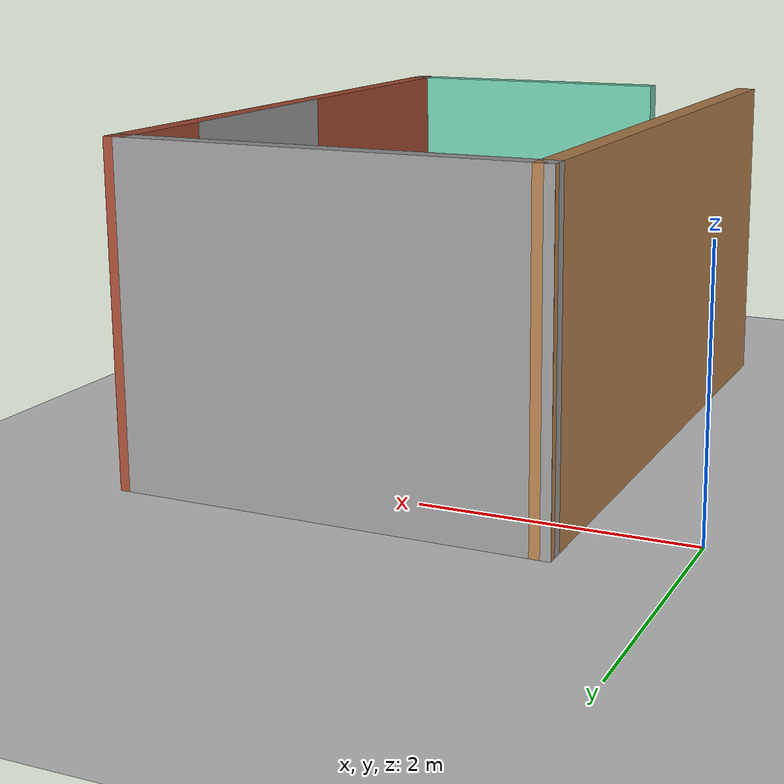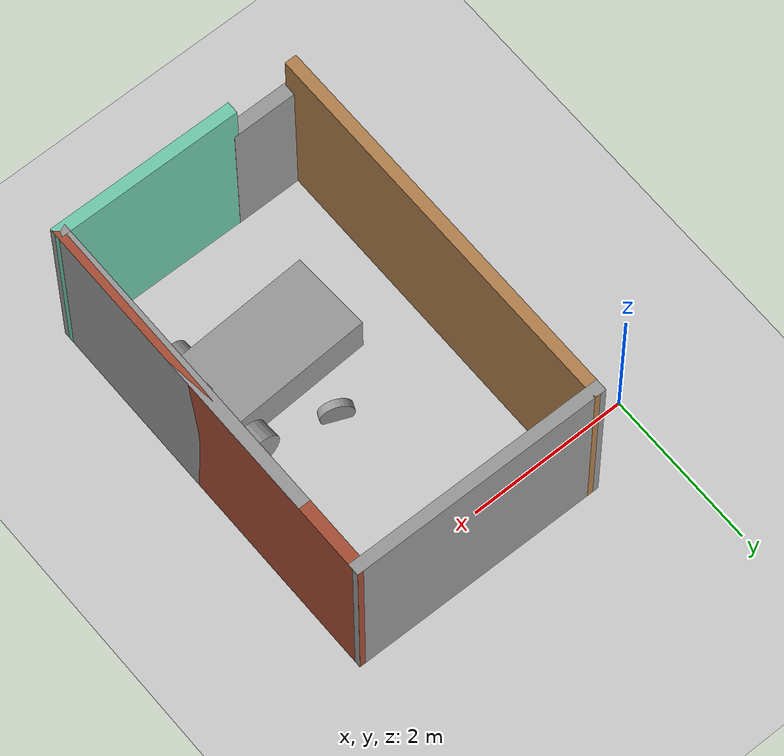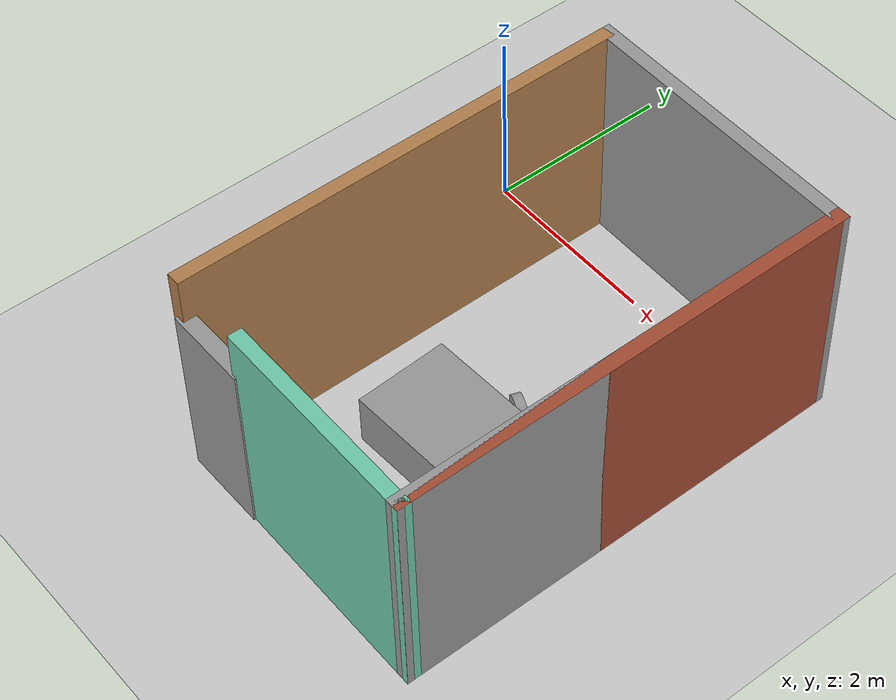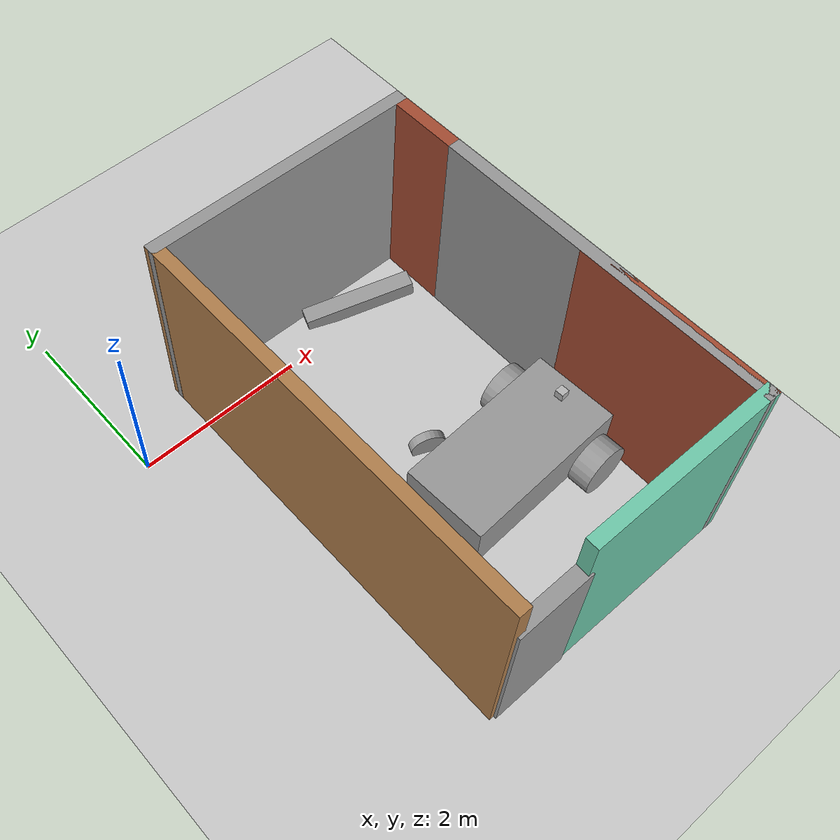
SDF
<sdf version="1.6">
 <world name="default">
  <plugin name="hi" filename="libhi.so"/>
  <light name="sun" type="directional">
   <pose>0 0 10 0 -0 0</pose>
   <diffuse>0.8 0.8 0.8 1</diffuse>
   <specular>0.2 0.2 0.2 1</specular>
   <attenuation>
    <range>1000</range>
    <constant>0.9</constant>
    <linear>0.01</linear>
    <quadratic>0.001</quadratic>
   </attenuation>
   <direction>-0.5 0.1 -0.9</direction>
  </light>
  <model name="ground_plane">
   <static>1</static>
   <link name="link">
    <collision name="collision">
     <geometry><plane><normal>0 0 1</normal><size>100 100</size></plane></geometry>
     <surface>
      <contact><collide_bitmask>65535</collide_bitmask></contact>
      <friction><ode><mu>100</mu><mu2>50</mu2></ode></friction>
     </surface>
    </collision>
    <visual name="visual">
     <cast_shadows>0</cast_shadows>
     <geometry><plane><normal>0 0 1</normal><size>100 100</size></plane></geometry>
     <material>
      <script><uri>file://media/materials/scripts/gazebo.material</uri><name>Gazebo/Grey</name></script>
     </material>
    </visual>
   </link>
  </model>
  <gravity>0 0 -9.8</gravity>
  <magnetic_field>6e-06 2.3e-05 -4.2e-05</magnetic_field>
  <atmosphere type="adiabatic"/>
  <physics name="default_physics" default="0" type="ode">
   <max_step_size>0.001</max_step_size>
   <real_time_factor>1</real_time_factor>
   <real_time_update_rate>1000</real_time_update_rate>
  </physics>
  <scene><ambient>0.4 0.4 0.4 1</ambient><background>0.7 0.7 0.7 1</background><shadows>1</shadows></scene>
  <audio><device>default</device></audio>
  <spherical_coordinates>
   <surface_model>EARTH_WGS84</surface_model>
   <latitude_deg>0</latitude_deg>
   <longitude_deg>0</longitude_deg>
   <elevation>0</elevation>
   <heading_deg>0</heading_deg>
  </spherical_coordinates>
  <model name="house">
   <pose>2.42969 -1.90929 0 0 -0 0</pose>
   <link name="Door_0">
    <collision name="Door_0_Collision">
     <geometry><box><size>0.9 0.17 2</size></box></geometry>
     <pose>0 0 1 0 -0 0</pose>
    </collision>
    <visual name="Door_0_Visual">
     <pose>0 0 1 0 -0 0</pose>
     <geometry><box><size>0.9 0.17 2</size></box></geometry>
     <material>
      <script><uri>file://media/materials/scripts/gazebo.material</uri><name>Gazebo/Grey</name></script>
     </material>
    </visual>
    <pose>-1.11144 -2.43119 0 0 -0 0</pose>
   </link>
   <link name="Wall_19">
    <collision name="Wall_19_Collision">
     <geometry><box><size>0.15 0.15 2.5</size></box></geometry>
     <pose>0 0 1.25 0 -0 0</pose>
    </collision>
    <visual name="Wall_19_Visual">
     <pose>0 0 1.25 0 -0 0</pose>
     <geometry><box><size>0.15 0.15 2.5</size></box></geometry>
     <material>
      <script><uri>file://media/materials/scripts/gazebo.material</uri><name>Gazebo/Grey</name></script>
      <ambient>1 1 1 1</ambient>
     </material>
     <meta><layer>0</layer></meta>
    </visual>
    <pose>1.5424 -2.44029 0 0 -0 0</pose>
   </link>
   <link name="Wall_23">
    <collision name="Wall_23_Collision">
     <geometry><box><size>4.06521 0.15 2.5</size></box></geometry>
     <pose>0 0 1.25 0 -0 0</pose>
    </collision>
    <visual name="Wall_23_Visual">
     <pose>0 0 1.25 0 -0 0</pose>
     <geometry><box><size>4.06521 0.15 2.5</size></box></geometry>
     <material>
      <script><uri>file://media/materials/scripts/gazebo.material</uri><name>Gazebo/Grey</name></script>
      <ambient>1 1 1 1</ambient>
     </material>
     <meta><layer>0</layer></meta>
    </visual>
    <pose>1.5424 -0.482688 0 0 -0 1.5708</pose>
   </link>
   <link name="Wall_30">
    <collision name="Wall_30_Collision">
     <geometry><box><size>2.33562 0.15 2.5</size></box></geometry>
     <pose>0 0 1.25 0 -0 0</pose>
    </collision>
    <visual name="Wall_30_Visual">
     <pose>0 0 1.25 0 -0 0</pose>
     <geometry><box><size>2.33562 0.15 2.5</size></box></geometry>
     <material>
      <script><uri>file://media/materials/scripts/gazebo.material</uri><name>Gazebo/Grey</name></script>
      <ambient>0.435294 0.796078 0.67451 1</ambient>
     </material>
     <meta><layer>0</layer></meta>
    </visual>
    <pose>0.449618 -2.43195 0 0 -0 -0.007632</pose>
   </link>
   <link name="Wall_4">
    <collision name="Wall_4_Collision">
     <geometry><box><size>5 0.15 2.5</size></box></geometry>
     <pose>0 0 1.25 0 -0 0</pose>
    </collision>
    <visual name="Wall_4_Visual">
     <pose>0 0 1.25 0 -0 0</pose>
     <geometry><box><size>5 0.15 2.5</size></box></geometry>
     <material>
      <script><uri>file://media/materials/scripts/gazebo.material</uri><name>Gazebo/Wood</name></script>
      <ambient>1 1 1 1</ambient>
     </material>
     <meta><layer>0</layer></meta>
    </visual>
    <pose>-1.5424 0.015126 0 0 -0 -1.5708</pose>
   </link>
   <link name="Wall_6">
    <collision name="Wall_6_Collision">
     <geometry><box><size>3.23513 0.15 2.5</size></box></geometry>
     <pose>0 0 1.25 0 -0 0</pose>
    </collision>
    <visual name="Wall_6_Visual">
     <pose>0 0 1.25 0 -0 0</pose>
     <geometry><box><size>3.23513 0.15 2.5</size></box></geometry>
     <material>
      <script><uri>file://media/materials/scripts/gazebo.material</uri><name>Gazebo/Grey</name></script>
      <ambient>1 1 1 1</ambient>
     </material>
     <meta><layer>0</layer></meta>
    </visual>
    <pose>0 2.42492 0 0 -0 -0.00986</pose>
   </link>
   <link name="Wall_8">
    <collision name="Wall_8_Collision">
     <geometry><box><size>5 0.15 2.5</size></box></geometry>
     <pose>0 0 1.25 0 -0 0</pose>
    </collision>
    <visual name="Wall_8_Visual">
     <pose>0 0 1.25 0 -0 0</pose>
     <geometry><box><size>5 0.15 2.5</size></box></geometry>
     <material>
      <script><uri>file://media/materials/scripts/gazebo.material</uri><name>Gazebo/Bricks</name></script>
      <ambient>0.435294 0.796078 0.67451 1</ambient>
     </material>
     <meta><layer>0</layer></meta>
    </visual>
    <pose>1.5424 -0.015292 0 0 -0 -1.5708</pose>
   </link>
   <static>1</static>
  </model>
  <model name="follower_vehicle">
   <pose>2.91424 -2.63733 0.325006 0 -1.1e-05 0.046963</pose>
   <link name="chassis">
    <pose>-0.151427 -0 0.175 0 -0 0</pose>
    <inertial>
     <mass>1.14395</mass>
     <inertia>
      <ixx>0.126164</ixx>
      <ixy>0</ixy>
      <ixz>0</ixz>
      <iyy>0.416519</iyy>
      <iyz>0</iyz>
      <izz>0.481014</izz>
     </inertia>
    </inertial>
    <visual name="visual">
     <geometry><box><size>2.01142 1 0.568726</size></box></geometry>
     <material>
      <script><uri>file://media/materials/scripts/gazebo.material</uri><name>Gazebo/Grey</name></script>
     </material>
    </visual>
    <collision name="collision">
     <geometry><box><size>2.01142 1 0.568726</size></box></geometry>
     <surface>
      <friction><ode><mu>1</mu><mu2>1</mu2><fdir1>0 0 0</fdir1><slip1>0</slip1><slip2>0</slip2></ode></friction>
      <bounce><restitution_coefficient>0</restitution_coefficient><threshold>1e+06</threshold></bounce>
      <contact>
       <collide_without_contact>0</collide_without_contact>
       <collide_without_contact_bitmask>1</collide_without_contact_bitmask>
       <collide_bitmask>1</collide_bitmask>
       <ode>
        <soft_cfm>0</soft_cfm>
        <soft_erp>0.2</soft_erp>
        <kp>1e+13</kp>
        <kd>1</kd>
        <max_vel>0.01</max_vel>
        <min_depth>0</min_depth>
       </ode>
      </contact>
     </surface>
    </collision>
   </link>
   <link name="wheel_1">
    <pose>0.554283 0.625029 -0.025 1.5707 -0 0</pose>
    <inertial>
     <mass>2</mass>
     <inertia><ixx>0.145833</ixx><ixy>0</ixy><ixz>0</ixz><iyy>0.145833</iyy><iyz>0</iyz><izz>0.125</izz></inertia>
    </inertial>
    <visual name="visual">
     <geometry><cylinder><radius>0.3</radius><length>0.25</length></cylinder></geometry>
     <material>
      <script><uri>file://media/materials/scripts/gazebo.material</uri><name>Gazebo/Grey</name></script>
     </material>
    </visual>
    <collision name="collision">
     <geometry><cylinder><radius>0.3</radius><length>0.25</length></cylinder></geometry>
     <surface>
      <friction><ode><mu>1</mu><mu2>1</mu2><fdir1>0 0 0</fdir1><slip1>0</slip1><slip2>0</slip2></ode></friction>
      <bounce><restitution_coefficient>0</restitution_coefficient><threshold>1e+06</threshold></bounce>
      <contact>
       <collide_without_contact>0</collide_without_contact>
       <collide_without_contact_bitmask>1</collide_without_contact_bitmask>
       <collide_bitmask>1</collide_bitmask>
       <ode>
        <soft_cfm>0</soft_cfm>
        <soft_erp>0.2</soft_erp>
        <kp>1e+13</kp>
        <kd>1</kd>
        <max_vel>0.01</max_vel>
        <min_depth>0</min_depth>
       </ode>
      </contact>
     </surface>
    </collision>
   </link>
   <link name="wheel_2">
    <pose>0.554282 -0.625029 -0.025 1.5707 -0 0</pose>
    <inertial>
     <mass>2</mass>
     <inertia><ixx>0.145833</ixx><ixy>0</ixy><ixz>0</ixz><iyy>0.145833</iyy><iyz>0</iyz><izz>0.125</izz></inertia>
    </inertial>
    <visual name="visual">
     <geometry><cylinder><radius>0.3</radius><length>0.25</length></cylinder></geometry>
     <material>
      <script><uri>file://media/materials/scripts/gazebo.material</uri><name>Gazebo/Grey</name></script>
     </material>
    </visual>
    <collision name="collision">
     <geometry><cylinder><radius>0.3</radius><length>0.25</length></cylinder></geometry>
     <surface>
      <friction><ode><mu>1</mu><mu2>1</mu2><fdir1>0 0 0</fdir1><slip1>0</slip1><slip2>0</slip2></ode></friction>
      <bounce><restitution_coefficient>0</restitution_coefficient><threshold>1e+06</threshold></bounce>
      <contact>
       <collide_without_contact>0</collide_without_contact>
       <collide_without_contact_bitmask>1</collide_without_contact_bitmask>
       <collide_bitmask>1</collide_bitmask>
       <ode>
        <soft_cfm>0</soft_cfm>
        <soft_erp>0.2</soft_erp>
        <kp>1e+13</kp>
        <kd>1</kd>
        <max_vel>0.01</max_vel>
        <min_depth>0</min_depth>
       </ode>
      </contact>
     </surface>
    </collision>
   </link>
   <link name="caster">
    <pose>-0.957138 -0 -0.125 0 -0 0</pose>
    <inertial>
     <mass>1</mass>
     <inertia><ixx>0.1</ixx><ixy>0</ixy><ixz>0</ixz><iyy>0.1</iyy><iyz>0</iyz><izz>0.1</izz></inertia>
    </inertial>
    <visual name="visual">
     <geometry><sphere><radius>0.2</radius></sphere></geometry>
     <material>
      <script><uri>file://media/materials/scripts/gazebo.material</uri><name>Gazebo/Grey</name></script>
     </material>
    </visual>
    <collision name="collision">
     <geometry><sphere><radius>0.2</radius></sphere></geometry>
     <surface>
      <friction><ode><mu>1</mu><mu2>1</mu2><fdir1>0 0 0</fdir1><slip1>0</slip1><slip2>0</slip2></ode></friction>
      <bounce><restitution_coefficient>0</restitution_coefficient><threshold>1e+06</threshold></bounce>
      <contact>
       <collide_without_contact>0</collide_without_contact>
       <collide_without_contact_bitmask>1</collide_without_contact_bitmask>
       <collide_bitmask>1</collide_bitmask>
       <ode>
        <soft_cfm>0</soft_cfm>
        <soft_erp>0.2</soft_erp>
        <kp>1e+13</kp>
        <kd>1</kd>
        <max_vel>0.01</max_vel>
        <min_depth>0</min_depth>
       </ode>
      </contact>
     </surface>
    </collision>
   </link>
   <model name="depth_camera">
    <link name="link">
     <pose>0.05 0.05 0.05 0 -0 0</pose>
     <inertial>
      <mass>0.1</mass>
      <inertia>
       <ixx>0.000166667</ixx>
       <iyy>0.000166667</iyy>
       <izz>0.000166667</izz>
       <ixy>0</ixy>
       <ixz>0</ixz>
       <iyz>0</iyz>
      </inertia>
     </inertial>
     <collision name="collision"><geometry><box><size>0.1 0.1 0.1</size></box></geometry></collision>
     <visual name="visual"><geometry><box><size>0.1 0.1 0.1</size></box></geometry></visual>
     <sensor name="camera" type="depth">
      <camera name="depth">
       <horizontal_fov>1.047</horizontal_fov>
       <image><width>320</width><height>240</height></image>
       <clip><near>0.1</near><far>100</far></clip>
      </camera>
      <always_on>1</always_on>
      <update_rate>30</update_rate>
      <visualize>1</visualize>
     </sensor>
    </link>
    <pose>0.569632 -0.03223 0.502056 0 -0 0</pose>
   </model>
   <joint name="chassis_wheel_1_revolute" type="revolute">
    <parent>chassis</parent>
    <child>wheel_1</child>
    <axis>
     <xyz>0 0 1</xyz>
     <use_parent_model_frame>0</use_parent_model_frame>
     <limit>
      <lower>-1.79769e+308</lower>
      <upper>1.79769e+308</upper>
      <effort>-1</effort>
      <velocity>-1</velocity>
     </limit>
     <dynamics>
      <spring_reference>0</spring_reference>
      <spring_stiffness>0</spring_stiffness>
      <damping>0</damping>
      <friction>0</friction>
     </dynamics>
    </axis>
    <physics>
     <ode><limit><cfm>0</cfm><erp>0.2</erp></limit><suspension><cfm>0</cfm><erp>0.2</erp></suspension></ode>
    </physics>
   </joint>
   <joint name="chassis_wheel_2_revolute" type="revolute">
    <parent>chassis</parent>
    <child>wheel_2</child>
    <axis>
     <xyz>0 0 1</xyz>
     <use_parent_model_frame>0</use_parent_model_frame>
     <limit>
      <lower>-1.79769e+308</lower>
      <upper>1.79769e+308</upper>
      <effort>-1</effort>
      <velocity>-1</velocity>
     </limit>
     <dynamics>
      <spring_reference>0</spring_reference>
      <spring_stiffness>0</spring_stiffness>
      <damping>0</damping>
      <friction>0</friction>
     </dynamics>
    </axis>
    <physics>
     <ode><limit><cfm>0</cfm><erp>0.2</erp></limit><suspension><cfm>0</cfm><erp>0.2</erp></suspension></ode>
    </physics>
   </joint>
   <joint name="chassis_caster_ball" type="ball">
    <parent>chassis</parent>
    <child>caster</child>
    <physics>
     <ode><limit><cfm>0</cfm><erp>0.2</erp></limit><suspension><cfm>0</cfm><erp>0.2</erp></suspension></ode>
    </physics>
   </joint>
   <joint name="chassis_depth_camera_link_fixed" type="fixed">
    <parent>chassis</parent>
    <child>depth_camera::link</child>
    <physics>
     <ode><limit><cfm>0</cfm><erp>0.2</erp></limit><suspension><cfm>0</cfm><erp>0.2</erp></suspension></ode>
    </physics>
   </joint>
   <static>0</static>
   <plugin name="follower" filename="libFollowerPlugin.so"/>
  </model>
  <model name="cyc">
   <link name="link_0">
    <inertial>
     <mass>3.98</mass>
     <inertia>
      <ixx>0.573783</ixx>
      <ixy>0</ixy>
      <ixz>0</ixz>
      <iyy>0.573783</iyy>
      <iyz>0</iyz>
      <izz>0.0265333</izz>
     </inertia>
    </inertial>
    <pose>0.033084 1.02117 -0.03 0 -0 0</pose>
    <visual name="visual">
     <geometry><box><size>0.2 0.2 1.3</size></box></geometry>
     <material>
      <lighting>1</lighting>
      <script><uri>file://media/materials/scripts/gazebo.material</uri><name>Gazebo/Grey</name></script>
      <shader type="vertex"><normal_map>__default__</normal_map></shader>
      <ambient>0.3 0.3 0.3 1</ambient>
      <diffuse>0.7 0.7 0.7 1</diffuse>
      <specular>0.01 0.01 0.01 1</specular>
      <emissive>0 0 0 1</emissive>
     </material>
    </visual>
    <collision name="collision">
     <geometry><box><size>0.04 0.04 1.69</size></box></geometry>
     <surface>
      <friction>
       <ode><mu>1</mu><mu2>1</mu2><fdir1>0 0 0</fdir1><slip1>0</slip1><slip2>0</slip2></ode>
       <torsional>
        <coefficient>1</coefficient>
        <patch_radius>0</patch_radius>
        <surface_radius>0</surface_radius>
        <use_patch_radius>1</use_patch_radius>
        <ode><slip>0</slip></ode>
       </torsional>
      </friction>
      <bounce><restitution_coefficient>0</restitution_coefficient><threshold>1e+06</threshold></bounce>
      <contact>
       <collide_without_contact>0</collide_without_contact>
       <collide_without_contact_bitmask>1</collide_without_contact_bitmask>
       <collide_bitmask>1</collide_bitmask>
       <ode>
        <soft_cfm>0</soft_cfm>
        <soft_erp>0.2</soft_erp>
        <kp>1e+13</kp>
        <kd>1</kd>
        <max_vel>0.01</max_vel>
        <min_depth>0</min_depth>
       </ode>
       <bullet>
        <split_impulse>1</split_impulse>
        <split_impulse_penetration_threshold>-0.01</split_impulse_penetration_threshold>
        <soft_cfm>0</soft_cfm>
        <soft_erp>0.2</soft_erp>
        <kp>1e+13</kp>
        <kd>1</kd>
       </bullet>
      </contact>
     </surface>
    </collision>
   </link>
   <link name="link_1">
    <inertial>
     <mass>3.98</mass>
     <inertia>
      <ixx>0.0419227</ixx>
      <ixy>0</ixy>
      <ixz>0</ixz>
      <iyy>0.0419227</iyy>
      <iyz>0</iyz>
      <izz>0.0796</izz>
     </inertia>
    </inertial>
    <pose>-0.033084 -1.02117 0.03 1.6 0.2 0</pose>
    <visual name="visual">
     <geometry><cylinder><radius>0.2</radius><length>0.1</length></cylinder></geometry>
     <material>
      <lighting>1</lighting>
      <script><uri>file://media/materials/scripts/gazebo.material</uri><name>Gazebo/Grey</name></script>
      <shader type="vertex"><normal_map>__default__</normal_map></shader>
      <ambient>0.3 0.3 0.3 1</ambient>
      <diffuse>0.7 0.7 0.7 1</diffuse>
      <specular>0.01 0.01 0.01 1</specular>
      <emissive>0 0 0 1</emissive>
     </material>
    </visual>
    <collision name="collision">
     <pose>0 0 0.01 0 -0 0</pose>
     <geometry><cylinder><radius>0.08</radius><length>0.0064</length></cylinder></geometry>
     <surface>
      <friction>
       <ode><mu>1</mu><mu2>1</mu2><fdir1>0 0 0</fdir1><slip1>0</slip1><slip2>0</slip2></ode>
       <torsional>
        <coefficient>1</coefficient>
        <patch_radius>0</patch_radius>
        <surface_radius>0</surface_radius>
        <use_patch_radius>1</use_patch_radius>
        <ode><slip>0</slip></ode>
       </torsional>
      </friction>
      <bounce><restitution_coefficient>0</restitution_coefficient><threshold>1e+06</threshold></bounce>
      <contact>
       <collide_without_contact>0</collide_without_contact>
       <collide_without_contact_bitmask>1</collide_without_contact_bitmask>
       <collide_bitmask>1</collide_bitmask>
       <ode>
        <soft_cfm>0</soft_cfm>
        <soft_erp>0.2</soft_erp>
        <kp>1e+13</kp>
        <kd>1</kd>
        <max_vel>0.01</max_vel>
        <min_depth>0</min_depth>
       </ode>
       <bullet>
        <split_impulse>1</split_impulse>
        <split_impulse_penetration_threshold>-0.01</split_impulse_penetration_threshold>
        <soft_cfm>0</soft_cfm>
        <soft_erp>0.2</soft_erp>
        <kp>1e+13</kp>
        <kd>1</kd>
       </bullet>
      </contact>
     </surface>
    </collision>
   </link>
   <joint name="link_1_JOINT_0" type="revolute">
    <parent>link_1</parent>
    <child>link_0</child>
    <axis>
     <xyz>1 0 0</xyz>
     <use_parent_model_frame>0</use_parent_model_frame>
     <limit>
      <lower>-1.79769e+308</lower>
      <upper>1.79769e+308</upper>
      <effort>-1</effort>
      <velocity>-1</velocity>
     </limit>
     <dynamics>
      <spring_reference>0</spring_reference>
      <spring_stiffness>0</spring_stiffness>
      <damping>0</damping>
     </dynamics>
    </axis>
    <physics>
     <ode><limit><cfm>0</cfm><erp>0.2</erp></limit><suspension><cfm>0</cfm><erp>0.2</erp></suspension></ode>
    </physics>
   </joint>
   <static>0</static>
   <pose>2.76361 -0.847127 0.116525 0.38862 1.42147 0.015622</pose>
  </model>
 </world>
</sdf>
